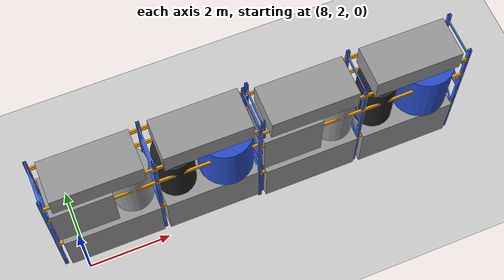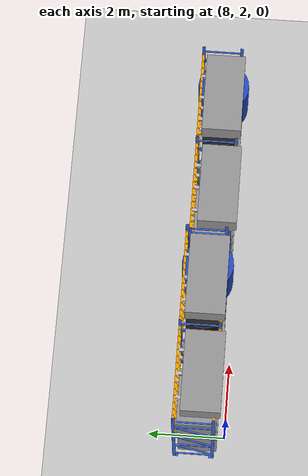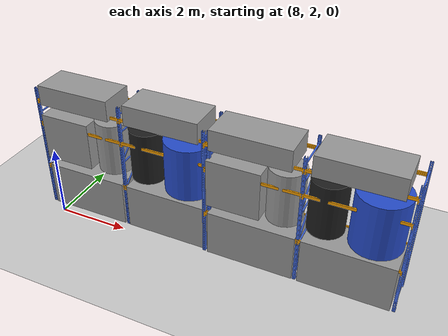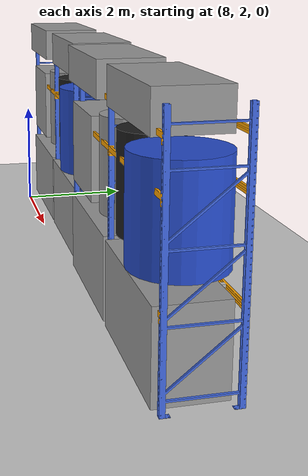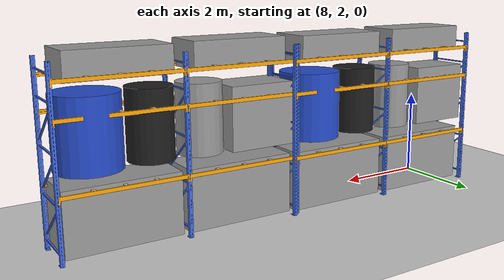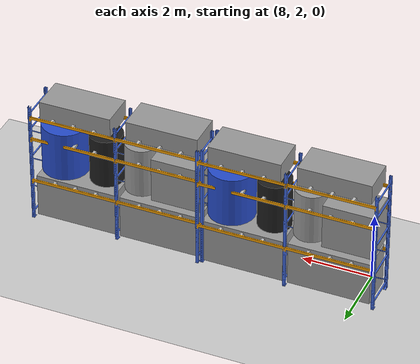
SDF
<sdf version="1.6">
 <world name="default">
  <model name="ground_plane">
   <static>1</static>
   <link name="link">
    <collision name="collision">
     <geometry><plane><normal>0 0 1</normal><size>100 100</size></plane></geometry>
     <surface><friction><ode><mu>100</mu><mu2>50</mu2></ode></friction></surface>
    </collision>
    <visual name="visual">
     <cast_shadows>0</cast_shadows>
     <geometry><plane><normal>0 0 1</normal><size>100 100</size></plane></geometry>
     <material>
      <script><uri>file://media/materials/scripts/gazebo.material</uri><name>Gazebo/Grey</name></script>
     </material>
    </visual>
   </link>
  </model>
  <model name="Full_shelf">
   <link name="link">
    <gravity>0</gravity>
    <inertial>
     <mass>1</mass>
     <inertia><ixx>1</ixx><ixy>0</ixy><ixz>0</ixz><iyy>1</iyy><iyz>0</iyz><izz>1</izz></inertia>
    </inertial>
    <visual name="visual">
     <geometry><mesh><uri>model://shelves_high/meshes/shelves_high.dae</uri><scale>1 1 1</scale></mesh></geometry>
     <material><shader type="vertex"><normal_map>__default__</normal_map></shader></material>
    </visual>
    <collision name="collision">
     <geometry>
      <mesh>
       <uri>/home/kosmastsk/.gazebo/models/shelves_high/meshes/shelves_high_collision.dae</uri>
       <scale>1 1 1</scale>
      </mesh>
     </geometry>
     <surface>
      <friction>
       <ode><mu>1</mu><mu2>1</mu2><fdir1>0 0 0</fdir1><slip1>0</slip1><slip2>0</slip2></ode>
       <torsional>
        <coefficient>1</coefficient>
        <patch_radius>0</patch_radius>
        <surface_radius>0</surface_radius>
        <use_patch_radius>1</use_patch_radius>
        <ode><slip>0</slip></ode>
       </torsional>
      </friction>
      <bounce><restitution_coefficient>0</restitution_coefficient><threshold>1e+06</threshold></bounce>
      <contact>
       <collide_without_contact>0</collide_without_contact>
       <collide_without_contact_bitmask>1</collide_without_contact_bitmask>
       <collide_bitmask>1</collide_bitmask>
       <ode>
        <soft_cfm>0</soft_cfm>
        <soft_erp>0.2</soft_erp>
        <kp>1e+13</kp>
        <kd>1</kd>
        <max_vel>0.01</max_vel>
        <min_depth>0</min_depth>
       </ode>
       <bullet>
        <split_impulse>1</split_impulse>
        <split_impulse_penetration_threshold>-0.01</split_impulse_penetration_threshold>
        <soft_cfm>0</soft_cfm>
        <soft_erp>0.2</soft_erp>
        <kp>1e+13</kp>
        <kd>1</kd>
       </bullet>
      </contact>
     </surface>
    </collision>
   </link>
   <link name="link_0">
    <pose>-1.21806 -0.607758 0.705407 0 -0 0</pose>
    <inertial>
     <mass>3.0149</mass>
     <inertia><ixx>0.669682</ixx><ixy>0</ixy><ixz>0</ixz><iyy>1.78963</iyy><iyz>0</iyz><izz>1.62244</izz></inertia>
    </inertial>
    <gravity>0</gravity>
    <visual name="visual">
     <geometry><box><size>2.33617 1 1.29054</size></box></geometry>
     <material>
      <lighting>1</lighting>
      <script><uri>file://media/materials/scripts/gazebo.material</uri><name>Gazebo/Grey</name></script>
      <ambient>0.3 0.3 0.3 1</ambient>
      <diffuse>0.7 0.7 0.7 1</diffuse>
      <specular>0.01 0.01 0.01 1</specular>
      <emissive>0 0 0 1</emissive>
      <shader type="vertex"><normal_map>__default__</normal_map></shader>
     </material>
    </visual>
    <collision name="collision">
     <geometry><box><size>2.33617 1 1.29054</size></box></geometry>
     <surface>
      <friction>
       <ode><mu>1</mu><mu2>1</mu2><fdir1>0 0 0</fdir1><slip1>0</slip1><slip2>0</slip2></ode>
       <torsional>
        <coefficient>1</coefficient>
        <patch_radius>0</patch_radius>
        <surface_radius>0</surface_radius>
        <use_patch_radius>1</use_patch_radius>
        <ode><slip>0</slip></ode>
       </torsional>
      </friction>
      <bounce><restitution_coefficient>0</restitution_coefficient><threshold>1e+06</threshold></bounce>
      <contact>
       <collide_without_contact>0</collide_without_contact>
       <collide_without_contact_bitmask>1</collide_without_contact_bitmask>
       <collide_bitmask>1</collide_bitmask>
       <ode>
        <soft_cfm>0</soft_cfm>
        <soft_erp>0.2</soft_erp>
        <kp>1e+13</kp>
        <kd>1</kd>
        <max_vel>0.01</max_vel>
        <min_depth>0</min_depth>
       </ode>
       <bullet>
        <split_impulse>1</split_impulse>
        <split_impulse_penetration_threshold>-0.01</split_impulse_penetration_threshold>
        <soft_cfm>0</soft_cfm>
        <soft_erp>0.2</soft_erp>
        <kp>1e+13</kp>
        <kd>1</kd>
       </bullet>
      </contact>
     </surface>
    </collision>
   </link>
   <link name="link_0_clone">
    <pose>1.26342 -0.615799 0.705407 0 -0 0</pose>
    <inertial>
     <mass>3.0149</mass>
     <inertia><ixx>0.669682</ixx><ixy>0</ixy><ixz>0</ixz><iyy>1.78963</iyy><iyz>0</iyz><izz>1.62244</izz></inertia>
    </inertial>
    <gravity>0</gravity>
    <visual name="visual">
     <geometry><box><size>2.33617 1 1.29054</size></box></geometry>
     <material>
      <lighting>1</lighting>
      <script><uri>file://media/materials/scripts/gazebo.material</uri><name>Gazebo/Grey</name></script>
      <ambient>0.3 0.3 0.3 1</ambient>
      <diffuse>0.7 0.7 0.7 1</diffuse>
      <specular>0.01 0.01 0.01 1</specular>
      <emissive>0 0 0 1</emissive>
      <shader type="vertex"><normal_map>__default__</normal_map></shader>
     </material>
    </visual>
    <collision name="collision">
     <geometry><box><size>2.33617 1 1.29054</size></box></geometry>
     <surface>
      <friction>
       <ode><mu>1</mu><mu2>1</mu2><fdir1>0 0 0</fdir1><slip1>0</slip1><slip2>0</slip2></ode>
       <torsional>
        <coefficient>1</coefficient>
        <patch_radius>0</patch_radius>
        <surface_radius>0</surface_radius>
        <use_patch_radius>1</use_patch_radius>
        <ode><slip>0</slip></ode>
       </torsional>
      </friction>
      <bounce><restitution_coefficient>0</restitution_coefficient><threshold>1e+06</threshold></bounce>
      <contact>
       <collide_without_contact>0</collide_without_contact>
       <collide_without_contact_bitmask>1</collide_without_contact_bitmask>
       <collide_bitmask>1</collide_bitmask>
       <ode>
        <soft_cfm>0</soft_cfm>
        <soft_erp>0.2</soft_erp>
        <kp>1e+13</kp>
        <kd>1</kd>
        <max_vel>0.01</max_vel>
        <min_depth>0</min_depth>
       </ode>
       <bullet>
        <split_impulse>1</split_impulse>
        <split_impulse_penetration_threshold>-0.01</split_impulse_penetration_threshold>
        <soft_cfm>0</soft_cfm>
        <soft_erp>0.2</soft_erp>
        <kp>1e+13</kp>
        <kd>1</kd>
       </bullet>
      </contact>
     </surface>
    </collision>
   </link>
   <link name="link_1">
    <pose>-1.72249 -0.574926 2.23564 0 -0 0</pose>
    <inertial>
     <mass>1.9112</mass>
     <inertia>
      <ixx>0.442719</ixx>
      <ixy>0</ixy>
      <ixz>0</ixz>
      <iyy>0.610326</iyy>
      <iyz>0</iyz>
      <izz>0.48614</izz>
     </inertia>
    </inertial>
    <gravity>0</gravity>
    <visual name="visual">
     <geometry><box><size>1.43261 1 1.33407</size></box></geometry>
     <material>
      <lighting>1</lighting>
      <script><uri>file://media/materials/scripts/gazebo.material</uri><name>Gazebo/Grey</name></script>
      <ambient>0.3 0.3 0.3 1</ambient>
      <diffuse>0.7 0.7 0.7 1</diffuse>
      <specular>0.01 0.01 0.01 1</specular>
      <emissive>0 0 0 1</emissive>
      <shader type="vertex"><normal_map>__default__</normal_map></shader>
     </material>
    </visual>
    <collision name="collision">
     <geometry><box><size>1.43261 1 1.33407</size></box></geometry>
     <surface>
      <friction>
       <ode><mu>1</mu><mu2>1</mu2><fdir1>0 0 0</fdir1><slip1>0</slip1><slip2>0</slip2></ode>
       <torsional>
        <coefficient>1</coefficient>
        <patch_radius>0</patch_radius>
        <surface_radius>0</surface_radius>
        <use_patch_radius>1</use_patch_radius>
        <ode><slip>0</slip></ode>
       </torsional>
      </friction>
      <bounce><restitution_coefficient>0</restitution_coefficient><threshold>1e+06</threshold></bounce>
      <contact>
       <collide_without_contact>0</collide_without_contact>
       <collide_without_contact_bitmask>1</collide_without_contact_bitmask>
       <collide_bitmask>1</collide_bitmask>
       <ode>
        <soft_cfm>0</soft_cfm>
        <soft_erp>0.2</soft_erp>
        <kp>1e+13</kp>
        <kd>1</kd>
        <max_vel>0.01</max_vel>
        <min_depth>0</min_depth>
       </ode>
       <bullet>
        <split_impulse>1</split_impulse>
        <split_impulse_penetration_threshold>-0.01</split_impulse_penetration_threshold>
        <soft_cfm>0</soft_cfm>
        <soft_erp>0.2</soft_erp>
        <kp>1e+13</kp>
        <kd>1</kd>
       </bullet>
      </contact>
     </surface>
    </collision>
   </link>
   <link name="link_2">
    <pose>-0.517546 -0.576274 2.28472 0 -0 0</pose>
    <inertial>
     <mass>1.31196</mass>
     <inertia>
      <ixx>0.306625</ixx>
      <ixy>0</ixy>
      <ixz>0</ixz>
      <iyy>0.306625</iyy>
      <iyz>0</iyz>
      <izz>0.147406</izz>
     </inertia>
    </inertial>
    <gravity>0</gravity>
    <visual name="visual">
     <geometry><cylinder><radius>0.474045</radius><length>1.45961</length></cylinder></geometry>
     <material>
      <lighting>1</lighting>
      <script><uri>file://media/materials/scripts/gazebo.material</uri><name>Gazebo/Grey</name></script>
      <ambient>0.3 0.3 0.3 1</ambient>
      <diffuse>0.7 0.7 0.7 1</diffuse>
      <specular>0.01 0.01 0.01 1</specular>
      <emissive>0 0 0 1</emissive>
      <shader type="vertex"><normal_map>__default__</normal_map></shader>
     </material>
    </visual>
    <collision name="collision">
     <geometry><cylinder><radius>0.474045</radius><length>1.45961</length></cylinder></geometry>
     <surface>
      <friction>
       <ode><mu>1</mu><mu2>1</mu2><fdir1>0 0 0</fdir1><slip1>0</slip1><slip2>0</slip2></ode>
       <torsional>
        <coefficient>1</coefficient>
        <patch_radius>0</patch_radius>
        <surface_radius>0</surface_radius>
        <use_patch_radius>1</use_patch_radius>
        <ode><slip>0</slip></ode>
       </torsional>
      </friction>
      <bounce><restitution_coefficient>0</restitution_coefficient><threshold>1e+06</threshold></bounce>
      <contact>
       <collide_without_contact>0</collide_without_contact>
       <collide_without_contact_bitmask>1</collide_without_contact_bitmask>
       <collide_bitmask>1</collide_bitmask>
       <ode>
        <soft_cfm>0</soft_cfm>
        <soft_erp>0.2</soft_erp>
        <kp>1e+13</kp>
        <kd>1</kd>
        <max_vel>0.01</max_vel>
        <min_depth>0</min_depth>
       </ode>
       <bullet>
        <split_impulse>1</split_impulse>
        <split_impulse_penetration_threshold>-0.01</split_impulse_penetration_threshold>
        <soft_cfm>0</soft_cfm>
        <soft_erp>0.2</soft_erp>
        <kp>1e+13</kp>
        <kd>1</kd>
       </bullet>
      </contact>
     </surface>
    </collision>
   </link>
   <link name="link_2_clone">
    <pose>0.526936 -0.581711 2.28472 0 -0 0</pose>
    <inertial>
     <mass>1.31196</mass>
     <inertia>
      <ixx>0.306625</ixx>
      <ixy>0</ixy>
      <ixz>0</ixz>
      <iyy>0.306625</iyy>
      <iyz>0</iyz>
      <izz>0.147406</izz>
     </inertia>
    </inertial>
    <gravity>0</gravity>
    <visual name="visual">
     <geometry><cylinder><radius>0.474045</radius><length>1.45961</length></cylinder></geometry>
     <material>
      <lighting>1</lighting>
      <script><uri>file://media/materials/scripts/gazebo.material</uri><name>Gazebo/Black</name></script>
      <ambient>0.3 0.3 0.3 1</ambient>
      <diffuse>0.7 0.7 0.7 1</diffuse>
      <specular>0.01 0.01 0.01 1</specular>
      <emissive>0 0 0 1</emissive>
      <shader type="vertex"><normal_map>__default__</normal_map></shader>
     </material>
    </visual>
    <collision name="collision">
     <geometry><cylinder><radius>0.474045</radius><length>1.45961</length></cylinder></geometry>
     <surface>
      <friction>
       <ode><mu>1</mu><mu2>1</mu2><fdir1>0 0 0</fdir1><slip1>0</slip1><slip2>0</slip2></ode>
       <torsional>
        <coefficient>1</coefficient>
        <patch_radius>0</patch_radius>
        <surface_radius>0</surface_radius>
        <use_patch_radius>1</use_patch_radius>
        <ode><slip>0</slip></ode>
       </torsional>
      </friction>
      <bounce><restitution_coefficient>0</restitution_coefficient><threshold>1e+06</threshold></bounce>
      <contact>
       <collide_without_contact>0</collide_without_contact>
       <collide_without_contact_bitmask>1</collide_without_contact_bitmask>
       <collide_bitmask>1</collide_bitmask>
       <ode>
        <soft_cfm>0</soft_cfm>
        <soft_erp>0.2</soft_erp>
        <kp>1e+13</kp>
        <kd>1</kd>
        <max_vel>0.01</max_vel>
        <min_depth>0</min_depth>
       </ode>
       <bullet>
        <split_impulse>1</split_impulse>
        <split_impulse_penetration_threshold>-0.01</split_impulse_penetration_threshold>
        <soft_cfm>0</soft_cfm>
        <soft_erp>0.2</soft_erp>
        <kp>1e+13</kp>
        <kd>1</kd>
       </bullet>
      </contact>
     </surface>
    </collision>
   </link>
   <link name="link_2_clone_0">
    <pose>1.75429 -0.591645 2.28472 0 -0 0</pose>
    <inertial>
     <mass>2.53501</mass>
     <inertia>
      <ixx>0.725231</ixx>
      <ixy>0</ixy>
      <ixz>0</ixz>
      <iyy>0.725231</iyy>
      <iyz>0</iyz>
      <izz>0.550343</izz>
     </inertia>
    </inertial>
    <gravity>0</gravity>
    <visual name="visual">
     <geometry><cylinder><radius>0.658947</radius><length>1.45961</length></cylinder></geometry>
     <material>
      <lighting>1</lighting>
      <script><uri>file://media/materials/scripts/gazebo.material</uri><name>Gazebo/Blue</name></script>
      <ambient>0.3 0.3 0.3 1</ambient>
      <diffuse>0.7 0.7 0.7 1</diffuse>
      <specular>0.01 0.01 0.01 1</specular>
      <emissive>0 0 0 1</emissive>
      <shader type="vertex"><normal_map>__default__</normal_map></shader>
     </material>
    </visual>
    <collision name="collision">
     <geometry><cylinder><radius>0.658947</radius><length>1.45961</length></cylinder></geometry>
     <surface>
      <friction>
       <ode><mu>1</mu><mu2>1</mu2><fdir1>0 0 0</fdir1><slip1>0</slip1><slip2>0</slip2></ode>
       <torsional>
        <coefficient>1</coefficient>
        <patch_radius>0</patch_radius>
        <surface_radius>0</surface_radius>
        <use_patch_radius>1</use_patch_radius>
        <ode><slip>0</slip></ode>
       </torsional>
      </friction>
      <bounce><restitution_coefficient>0</restitution_coefficient><threshold>1e+06</threshold></bounce>
      <contact>
       <collide_without_contact>0</collide_without_contact>
       <collide_without_contact_bitmask>1</collide_without_contact_bitmask>
       <collide_bitmask>1</collide_bitmask>
       <ode>
        <soft_cfm>0</soft_cfm>
        <soft_erp>0.2</soft_erp>
        <kp>1e+13</kp>
        <kd>1</kd>
        <max_vel>0.01</max_vel>
        <min_depth>0</min_depth>
       </ode>
       <bullet>
        <split_impulse>1</split_impulse>
        <split_impulse_penetration_threshold>-0.01</split_impulse_penetration_threshold>
        <soft_cfm>0</soft_cfm>
        <soft_erp>0.2</soft_erp>
        <kp>1e+13</kp>
        <kd>1</kd>
       </bullet>
      </contact>
     </surface>
    </collision>
   </link>
   <link name="link_3">
    <pose>-1.28062 -0.665513 3.55602 0 -0 0</pose>
    <inertial>
     <mass>1.1657</mass>
     <inertia>
      <ixx>0.127836</ixx>
      <ixy>0</ixy>
      <ixz>0</ixz>
      <iyy>0.448459</iyy>
      <iyz>0</iyz>
      <izz>0.514907</izz>
     </inertia>
    </inertial>
    <gravity>0</gravity>
    <visual name="visual">
     <geometry><box><size>2.07377 1 0.562114</size></box></geometry>
     <material>
      <lighting>1</lighting>
      <script><uri>file://media/materials/scripts/gazebo.material</uri><name>Gazebo/Grey</name></script>
      <ambient>0.3 0.3 0.3 1</ambient>
      <diffuse>0.7 0.7 0.7 1</diffuse>
      <specular>0.01 0.01 0.01 1</specular>
      <emissive>0 0 0 1</emissive>
      <shader type="vertex"><normal_map>__default__</normal_map></shader>
     </material>
    </visual>
    <collision name="collision">
     <geometry><box><size>2.07377 1 0.562114</size></box></geometry>
     <surface>
      <friction>
       <ode><mu>1</mu><mu2>1</mu2><fdir1>0 0 0</fdir1><slip1>0</slip1><slip2>0</slip2></ode>
       <torsional>
        <coefficient>1</coefficient>
        <patch_radius>0</patch_radius>
        <surface_radius>0</surface_radius>
        <use_patch_radius>1</use_patch_radius>
        <ode><slip>0</slip></ode>
       </torsional>
      </friction>
      <bounce><restitution_coefficient>0</restitution_coefficient><threshold>1e+06</threshold></bounce>
      <contact>
       <collide_without_contact>0</collide_without_contact>
       <collide_without_contact_bitmask>1</collide_without_contact_bitmask>
       <collide_bitmask>1</collide_bitmask>
       <ode>
        <soft_cfm>0</soft_cfm>
        <soft_erp>0.2</soft_erp>
        <kp>1e+13</kp>
        <kd>1</kd>
        <max_vel>0.01</max_vel>
        <min_depth>0</min_depth>
       </ode>
       <bullet>
        <split_impulse>1</split_impulse>
        <split_impulse_penetration_threshold>-0.01</split_impulse_penetration_threshold>
        <soft_cfm>0</soft_cfm>
        <soft_erp>0.2</soft_erp>
        <kp>1e+13</kp>
        <kd>1</kd>
       </bullet>
      </contact>
     </surface>
    </collision>
   </link>
   <link name="link_3_clone">
    <pose>1.22598 -0.613311 3.54121 0 -0 0</pose>
    <inertial>
     <mass>1.1657</mass>
     <inertia>
      <ixx>0.127836</ixx>
      <ixy>0</ixy>
      <ixz>0</ixz>
      <iyy>0.448459</iyy>
      <iyz>0</iyz>
      <izz>0.514907</izz>
     </inertia>
    </inertial>
    <gravity>0</gravity>
    <visual name="visual">
     <geometry><box><size>2.07377 1 0.562114</size></box></geometry>
     <material>
      <lighting>1</lighting>
      <script><uri>file://media/materials/scripts/gazebo.material</uri><name>Gazebo/Grey</name></script>
      <ambient>0.3 0.3 0.3 1</ambient>
      <diffuse>0.7 0.7 0.7 1</diffuse>
      <specular>0.01 0.01 0.01 1</specular>
      <emissive>0 0 0 1</emissive>
      <shader type="vertex"><normal_map>__default__</normal_map></shader>
     </material>
    </visual>
    <collision name="collision">
     <geometry><box><size>2.07377 1 0.562114</size></box></geometry>
     <surface>
      <friction>
       <ode><mu>1</mu><mu2>1</mu2><fdir1>0 0 0</fdir1><slip1>0</slip1><slip2>0</slip2></ode>
       <torsional>
        <coefficient>1</coefficient>
        <patch_radius>0</patch_radius>
        <surface_radius>0</surface_radius>
        <use_patch_radius>1</use_patch_radius>
        <ode><slip>0</slip></ode>
       </torsional>
      </friction>
      <bounce><restitution_coefficient>0</restitution_coefficient><threshold>1e+06</threshold></bounce>
      <contact>
       <collide_without_contact>0</collide_without_contact>
       <collide_without_contact_bitmask>1</collide_without_contact_bitmask>
       <collide_bitmask>1</collide_bitmask>
       <ode>
        <soft_cfm>0</soft_cfm>
        <soft_erp>0.2</soft_erp>
        <kp>1e+13</kp>
        <kd>1</kd>
        <max_vel>0.01</max_vel>
        <min_depth>0</min_depth>
       </ode>
       <bullet>
        <split_impulse>1</split_impulse>
        <split_impulse_penetration_threshold>-0.01</split_impulse_penetration_threshold>
        <soft_cfm>0</soft_cfm>
        <soft_erp>0.2</soft_erp>
        <kp>1e+13</kp>
        <kd>1</kd>
       </bullet>
      </contact>
     </surface>
    </collision>
   </link>
   <static>1</static>
   <pose>14.9388 3.2209 0 0 -0 0</pose>
  </model>
  <model name="Full_shelf_0">
   <link name="link">
    <gravity>0</gravity>
    <inertial>
     <mass>1</mass>
     <inertia><ixx>1</ixx><ixy>0</ixy><ixz>0</ixz><iyy>1</iyy><iyz>0</iyz><izz>1</izz></inertia>
    </inertial>
    <visual name="visual">
     <geometry><mesh><uri>model://shelves_high/meshes/shelves_high.dae</uri><scale>1 1 1</scale></mesh></geometry>
     <material><shader type="vertex"><normal_map>__default__</normal_map></shader></material>
    </visual>
    <collision name="collision">
     <geometry>
      <mesh>
       <uri>/home/kosmastsk/.gazebo/models/shelves_high/meshes/shelves_high_collision.dae</uri>
       <scale>1 1 1</scale>
      </mesh>
     </geometry>
     <surface>
      <friction>
       <ode><mu>1</mu><mu2>1</mu2><fdir1>0 0 0</fdir1><slip1>0</slip1><slip2>0</slip2></ode>
       <torsional>
        <coefficient>1</coefficient>
        <patch_radius>0</patch_radius>
        <surface_radius>0</surface_radius>
        <use_patch_radius>1</use_patch_radius>
        <ode><slip>0</slip></ode>
       </torsional>
      </friction>
      <bounce><restitution_coefficient>0</restitution_coefficient><threshold>1e+06</threshold></bounce>
      <contact>
       <collide_without_contact>0</collide_without_contact>
       <collide_without_contact_bitmask>1</collide_without_contact_bitmask>
       <collide_bitmask>1</collide_bitmask>
       <ode>
        <soft_cfm>0</soft_cfm>
        <soft_erp>0.2</soft_erp>
        <kp>1e+13</kp>
        <kd>1</kd>
        <max_vel>0.01</max_vel>
        <min_depth>0</min_depth>
       </ode>
       <bullet>
        <split_impulse>1</split_impulse>
        <split_impulse_penetration_threshold>-0.01</split_impulse_penetration_threshold>
        <soft_cfm>0</soft_cfm>
        <soft_erp>0.2</soft_erp>
        <kp>1e+13</kp>
        <kd>1</kd>
       </bullet>
      </contact>
     </surface>
    </collision>
   </link>
   <link name="link_0">
    <pose>-1.21806 -0.607758 0.705407 0 -0 0</pose>
    <inertial>
     <mass>3.0149</mass>
     <inertia><ixx>0.669682</ixx><ixy>0</ixy><ixz>0</ixz><iyy>1.78963</iyy><iyz>0</iyz><izz>1.62244</izz></inertia>
    </inertial>
    <gravity>0</gravity>
    <visual name="visual">
     <geometry><box><size>2.33617 1 1.29054</size></box></geometry>
     <material>
      <lighting>1</lighting>
      <script><uri>file://media/materials/scripts/gazebo.material</uri><name>Gazebo/Grey</name></script>
      <ambient>0.3 0.3 0.3 1</ambient>
      <diffuse>0.7 0.7 0.7 1</diffuse>
      <specular>0.01 0.01 0.01 1</specular>
      <emissive>0 0 0 1</emissive>
      <shader type="vertex"><normal_map>__default__</normal_map></shader>
     </material>
    </visual>
    <collision name="collision">
     <geometry><box><size>2.33617 1 1.29054</size></box></geometry>
     <surface>
      <friction>
       <ode><mu>1</mu><mu2>1</mu2><fdir1>0 0 0</fdir1><slip1>0</slip1><slip2>0</slip2></ode>
       <torsional>
        <coefficient>1</coefficient>
        <patch_radius>0</patch_radius>
        <surface_radius>0</surface_radius>
        <use_patch_radius>1</use_patch_radius>
        <ode><slip>0</slip></ode>
       </torsional>
      </friction>
      <bounce><restitution_coefficient>0</restitution_coefficient><threshold>1e+06</threshold></bounce>
      <contact>
       <collide_without_contact>0</collide_without_contact>
       <collide_without_contact_bitmask>1</collide_without_contact_bitmask>
       <collide_bitmask>1</collide_bitmask>
       <ode>
        <soft_cfm>0</soft_cfm>
        <soft_erp>0.2</soft_erp>
        <kp>1e+13</kp>
        <kd>1</kd>
        <max_vel>0.01</max_vel>
        <min_depth>0</min_depth>
       </ode>
       <bullet>
        <split_impulse>1</split_impulse>
        <split_impulse_penetration_threshold>-0.01</split_impulse_penetration_threshold>
        <soft_cfm>0</soft_cfm>
        <soft_erp>0.2</soft_erp>
        <kp>1e+13</kp>
        <kd>1</kd>
       </bullet>
      </contact>
     </surface>
    </collision>
   </link>
   <link name="link_0_clone">
    <pose>1.26342 -0.615799 0.705407 0 -0 0</pose>
    <inertial>
     <mass>3.0149</mass>
     <inertia><ixx>0.669682</ixx><ixy>0</ixy><ixz>0</ixz><iyy>1.78963</iyy><iyz>0</iyz><izz>1.62244</izz></inertia>
    </inertial>
    <gravity>0</gravity>
    <visual name="visual">
     <geometry><box><size>2.33617 1 1.29054</size></box></geometry>
     <material>
      <lighting>1</lighting>
      <script><uri>file://media/materials/scripts/gazebo.material</uri><name>Gazebo/Grey</name></script>
      <ambient>0.3 0.3 0.3 1</ambient>
      <diffuse>0.7 0.7 0.7 1</diffuse>
      <specular>0.01 0.01 0.01 1</specular>
      <emissive>0 0 0 1</emissive>
      <shader type="vertex"><normal_map>__default__</normal_map></shader>
     </material>
    </visual>
    <collision name="collision">
     <geometry><box><size>2.33617 1 1.29054</size></box></geometry>
     <surface>
      <friction>
       <ode><mu>1</mu><mu2>1</mu2><fdir1>0 0 0</fdir1><slip1>0</slip1><slip2>0</slip2></ode>
       <torsional>
        <coefficient>1</coefficient>
        <patch_radius>0</patch_radius>
        <surface_radius>0</surface_radius>
        <use_patch_radius>1</use_patch_radius>
        <ode><slip>0</slip></ode>
       </torsional>
      </friction>
      <bounce><restitution_coefficient>0</restitution_coefficient><threshold>1e+06</threshold></bounce>
      <contact>
       <collide_without_contact>0</collide_without_contact>
       <collide_without_contact_bitmask>1</collide_without_contact_bitmask>
       <collide_bitmask>1</collide_bitmask>
       <ode>
        <soft_cfm>0</soft_cfm>
        <soft_erp>0.2</soft_erp>
        <kp>1e+13</kp>
        <kd>1</kd>
        <max_vel>0.01</max_vel>
        <min_depth>0</min_depth>
       </ode>
       <bullet>
        <split_impulse>1</split_impulse>
        <split_impulse_penetration_threshold>-0.01</split_impulse_penetration_threshold>
        <soft_cfm>0</soft_cfm>
        <soft_erp>0.2</soft_erp>
        <kp>1e+13</kp>
        <kd>1</kd>
       </bullet>
      </contact>
     </surface>
    </collision>
   </link>
   <link name="link_1">
    <pose>-1.72249 -0.574926 2.23564 0 -0 0</pose>
    <inertial>
     <mass>1.9112</mass>
     <inertia>
      <ixx>0.442719</ixx>
      <ixy>0</ixy>
      <ixz>0</ixz>
      <iyy>0.610326</iyy>
      <iyz>0</iyz>
      <izz>0.48614</izz>
     </inertia>
    </inertial>
    <gravity>0</gravity>
    <visual name="visual">
     <geometry><box><size>1.43261 1 1.33407</size></box></geometry>
     <material>
      <lighting>1</lighting>
      <script><uri>file://media/materials/scripts/gazebo.material</uri><name>Gazebo/Grey</name></script>
      <ambient>0.3 0.3 0.3 1</ambient>
      <diffuse>0.7 0.7 0.7 1</diffuse>
      <specular>0.01 0.01 0.01 1</specular>
      <emissive>0 0 0 1</emissive>
      <shader type="vertex"><normal_map>__default__</normal_map></shader>
     </material>
    </visual>
    <collision name="collision">
     <geometry><box><size>1.43261 1 1.33407</size></box></geometry>
     <surface>
      <friction>
       <ode><mu>1</mu><mu2>1</mu2><fdir1>0 0 0</fdir1><slip1>0</slip1><slip2>0</slip2></ode>
       <torsional>
        <coefficient>1</coefficient>
        <patch_radius>0</patch_radius>
        <surface_radius>0</surface_radius>
        <use_patch_radius>1</use_patch_radius>
        <ode><slip>0</slip></ode>
       </torsional>
      </friction>
      <bounce><restitution_coefficient>0</restitution_coefficient><threshold>1e+06</threshold></bounce>
      <contact>
       <collide_without_contact>0</collide_without_contact>
       <collide_without_contact_bitmask>1</collide_without_contact_bitmask>
       <collide_bitmask>1</collide_bitmask>
       <ode>
        <soft_cfm>0</soft_cfm>
        <soft_erp>0.2</soft_erp>
        <kp>1e+13</kp>
        <kd>1</kd>
        <max_vel>0.01</max_vel>
        <min_depth>0</min_depth>
       </ode>
       <bullet>
        <split_impulse>1</split_impulse>
        <split_impulse_penetration_threshold>-0.01</split_impulse_penetration_threshold>
        <soft_cfm>0</soft_cfm>
        <soft_erp>0.2</soft_erp>
        <kp>1e+13</kp>
        <kd>1</kd>
       </bullet>
      </contact>
     </surface>
    </collision>
   </link>
   <link name="link_2">
    <pose>-0.517546 -0.576274 2.28472 0 -0 0</pose>
    <inertial>
     <mass>1.31196</mass>
     <inertia>
      <ixx>0.306625</ixx>
      <ixy>0</ixy>
      <ixz>0</ixz>
      <iyy>0.306625</iyy>
      <iyz>0</iyz>
      <izz>0.147406</izz>
     </inertia>
    </inertial>
    <gravity>0</gravity>
    <visual name="visual">
     <geometry><cylinder><radius>0.474045</radius><length>1.45961</length></cylinder></geometry>
     <material>
      <lighting>1</lighting>
      <script><uri>file://media/materials/scripts/gazebo.material</uri><name>Gazebo/Grey</name></script>
      <ambient>0.3 0.3 0.3 1</ambient>
      <diffuse>0.7 0.7 0.7 1</diffuse>
      <specular>0.01 0.01 0.01 1</specular>
      <emissive>0 0 0 1</emissive>
      <shader type="vertex"><normal_map>__default__</normal_map></shader>
     </material>
    </visual>
    <collision name="collision">
     <geometry><cylinder><radius>0.474045</radius><length>1.45961</length></cylinder></geometry>
     <surface>
      <friction>
       <ode><mu>1</mu><mu2>1</mu2><fdir1>0 0 0</fdir1><slip1>0</slip1><slip2>0</slip2></ode>
       <torsional>
        <coefficient>1</coefficient>
        <patch_radius>0</patch_radius>
        <surface_radius>0</surface_radius>
        <use_patch_radius>1</use_patch_radius>
        <ode><slip>0</slip></ode>
       </torsional>
      </friction>
      <bounce><restitution_coefficient>0</restitution_coefficient><threshold>1e+06</threshold></bounce>
      <contact>
       <collide_without_contact>0</collide_without_contact>
       <collide_without_contact_bitmask>1</collide_without_contact_bitmask>
       <collide_bitmask>1</collide_bitmask>
       <ode>
        <soft_cfm>0</soft_cfm>
        <soft_erp>0.2</soft_erp>
        <kp>1e+13</kp>
        <kd>1</kd>
        <max_vel>0.01</max_vel>
        <min_depth>0</min_depth>
       </ode>
       <bullet>
        <split_impulse>1</split_impulse>
        <split_impulse_penetration_threshold>-0.01</split_impulse_penetration_threshold>
        <soft_cfm>0</soft_cfm>
        <soft_erp>0.2</soft_erp>
        <kp>1e+13</kp>
        <kd>1</kd>
       </bullet>
      </contact>
     </surface>
    </collision>
   </link>
   <link name="link_2_clone">
    <pose>0.526936 -0.581711 2.28472 0 -0 0</pose>
    <inertial>
     <mass>1.31196</mass>
     <inertia>
      <ixx>0.306625</ixx>
      <ixy>0</ixy>
      <ixz>0</ixz>
      <iyy>0.306625</iyy>
      <iyz>0</iyz>
      <izz>0.147406</izz>
     </inertia>
    </inertial>
    <gravity>0</gravity>
    <visual name="visual">
     <geometry><cylinder><radius>0.474045</radius><length>1.45961</length></cylinder></geometry>
     <material>
      <lighting>1</lighting>
      <script><uri>file://media/materials/scripts/gazebo.material</uri><name>Gazebo/Black</name></script>
      <ambient>0.3 0.3 0.3 1</ambient>
      <diffuse>0.7 0.7 0.7 1</diffuse>
      <specular>0.01 0.01 0.01 1</specular>
      <emissive>0 0 0 1</emissive>
      <shader type="vertex"><normal_map>__default__</normal_map></shader>
     </material>
    </visual>
    <collision name="collision">
     <geometry><cylinder><radius>0.474045</radius><length>1.45961</length></cylinder></geometry>
     <surface>
      <friction>
       <ode><mu>1</mu><mu2>1</mu2><fdir1>0 0 0</fdir1><slip1>0</slip1><slip2>0</slip2></ode>
       <torsional>
        <coefficient>1</coefficient>
        <patch_radius>0</patch_radius>
        <surface_radius>0</surface_radius>
        <use_patch_radius>1</use_patch_radius>
        <ode><slip>0</slip></ode>
       </torsional>
      </friction>
      <bounce><restitution_coefficient>0</restitution_coefficient><threshold>1e+06</threshold></bounce>
      <contact>
       <collide_without_contact>0</collide_without_contact>
       <collide_without_contact_bitmask>1</collide_without_contact_bitmask>
       <collide_bitmask>1</collide_bitmask>
       <ode>
        <soft_cfm>0</soft_cfm>
        <soft_erp>0.2</soft_erp>
        <kp>1e+13</kp>
        <kd>1</kd>
        <max_vel>0.01</max_vel>
        <min_depth>0</min_depth>
       </ode>
       <bullet>
        <split_impulse>1</split_impulse>
        <split_impulse_penetration_threshold>-0.01</split_impulse_penetration_threshold>
        <soft_cfm>0</soft_cfm>
        <soft_erp>0.2</soft_erp>
        <kp>1e+13</kp>
        <kd>1</kd>
       </bullet>
      </contact>
     </surface>
    </collision>
   </link>
   <link name="link_2_clone_0">
    <pose>1.75429 -0.591645 2.28472 0 -0 0</pose>
    <inertial>
     <mass>2.53501</mass>
     <inertia>
      <ixx>0.725231</ixx>
      <ixy>0</ixy>
      <ixz>0</ixz>
      <iyy>0.725231</iyy>
      <iyz>0</iyz>
      <izz>0.550343</izz>
     </inertia>
    </inertial>
    <gravity>0</gravity>
    <visual name="visual">
     <geometry><cylinder><radius>0.658947</radius><length>1.45961</length></cylinder></geometry>
     <material>
      <lighting>1</lighting>
      <script><uri>file://media/materials/scripts/gazebo.material</uri><name>Gazebo/Blue</name></script>
      <ambient>0.3 0.3 0.3 1</ambient>
      <diffuse>0.7 0.7 0.7 1</diffuse>
      <specular>0.01 0.01 0.01 1</specular>
      <emissive>0 0 0 1</emissive>
      <shader type="vertex"><normal_map>__default__</normal_map></shader>
     </material>
    </visual>
    <collision name="collision">
     <geometry><cylinder><radius>0.658947</radius><length>1.45961</length></cylinder></geometry>
     <surface>
      <friction>
       <ode><mu>1</mu><mu2>1</mu2><fdir1>0 0 0</fdir1><slip1>0</slip1><slip2>0</slip2></ode>
       <torsional>
        <coefficient>1</coefficient>
        <patch_radius>0</patch_radius>
        <surface_radius>0</surface_radius>
        <use_patch_radius>1</use_patch_radius>
        <ode><slip>0</slip></ode>
       </torsional>
      </friction>
      <bounce><restitution_coefficient>0</restitution_coefficient><threshold>1e+06</threshold></bounce>
      <contact>
       <collide_without_contact>0</collide_without_contact>
       <collide_without_contact_bitmask>1</collide_without_contact_bitmask>
       <collide_bitmask>1</collide_bitmask>
       <ode>
        <soft_cfm>0</soft_cfm>
        <soft_erp>0.2</soft_erp>
        <kp>1e+13</kp>
        <kd>1</kd>
        <max_vel>0.01</max_vel>
        <min_depth>0</min_depth>
       </ode>
       <bullet>
        <split_impulse>1</split_impulse>
        <split_impulse_penetration_threshold>-0.01</split_impulse_penetration_threshold>
        <soft_cfm>0</soft_cfm>
        <soft_erp>0.2</soft_erp>
        <kp>1e+13</kp>
        <kd>1</kd>
       </bullet>
      </contact>
     </surface>
    </collision>
   </link>
   <link name="link_3">
    <pose>-1.28062 -0.665513 3.55602 0 -0 0</pose>
    <inertial>
     <mass>1.1657</mass>
     <inertia>
      <ixx>0.127836</ixx>
      <ixy>0</ixy>
      <ixz>0</ixz>
      <iyy>0.448459</iyy>
      <iyz>0</iyz>
      <izz>0.514907</izz>
     </inertia>
    </inertial>
    <gravity>0</gravity>
    <visual name="visual">
     <geometry><box><size>2.07377 1 0.562114</size></box></geometry>
     <material>
      <lighting>1</lighting>
      <script><uri>file://media/materials/scripts/gazebo.material</uri><name>Gazebo/Grey</name></script>
      <ambient>0.3 0.3 0.3 1</ambient>
      <diffuse>0.7 0.7 0.7 1</diffuse>
      <specular>0.01 0.01 0.01 1</specular>
      <emissive>0 0 0 1</emissive>
      <shader type="vertex"><normal_map>__default__</normal_map></shader>
     </material>
    </visual>
    <collision name="collision">
     <geometry><box><size>2.07377 1 0.562114</size></box></geometry>
     <surface>
      <friction>
       <ode><mu>1</mu><mu2>1</mu2><fdir1>0 0 0</fdir1><slip1>0</slip1><slip2>0</slip2></ode>
       <torsional>
        <coefficient>1</coefficient>
        <patch_radius>0</patch_radius>
        <surface_radius>0</surface_radius>
        <use_patch_radius>1</use_patch_radius>
        <ode><slip>0</slip></ode>
       </torsional>
      </friction>
      <bounce><restitution_coefficient>0</restitution_coefficient><threshold>1e+06</threshold></bounce>
      <contact>
       <collide_without_contact>0</collide_without_contact>
       <collide_without_contact_bitmask>1</collide_without_contact_bitmask>
       <collide_bitmask>1</collide_bitmask>
       <ode>
        <soft_cfm>0</soft_cfm>
        <soft_erp>0.2</soft_erp>
        <kp>1e+13</kp>
        <kd>1</kd>
        <max_vel>0.01</max_vel>
        <min_depth>0</min_depth>
       </ode>
       <bullet>
        <split_impulse>1</split_impulse>
        <split_impulse_penetration_threshold>-0.01</split_impulse_penetration_threshold>
        <soft_cfm>0</soft_cfm>
        <soft_erp>0.2</soft_erp>
        <kp>1e+13</kp>
        <kd>1</kd>
       </bullet>
      </contact>
     </surface>
    </collision>
   </link>
   <link name="link_3_clone">
    <pose>1.22598 -0.613311 3.54121 0 -0 0</pose>
    <inertial>
     <mass>1.1657</mass>
     <inertia>
      <ixx>0.127836</ixx>
      <ixy>0</ixy>
      <ixz>0</ixz>
      <iyy>0.448459</iyy>
      <iyz>0</iyz>
      <izz>0.514907</izz>
     </inertia>
    </inertial>
    <gravity>0</gravity>
    <visual name="visual">
     <geometry><box><size>2.07377 1 0.562114</size></box></geometry>
     <material>
      <lighting>1</lighting>
      <script><uri>file://media/materials/scripts/gazebo.material</uri><name>Gazebo/Grey</name></script>
      <ambient>0.3 0.3 0.3 1</ambient>
      <diffuse>0.7 0.7 0.7 1</diffuse>
      <specular>0.01 0.01 0.01 1</specular>
      <emissive>0 0 0 1</emissive>
      <shader type="vertex"><normal_map>__default__</normal_map></shader>
     </material>
    </visual>
    <collision name="collision">
     <geometry><box><size>2.07377 1 0.562114</size></box></geometry>
     <surface>
      <friction>
       <ode><mu>1</mu><mu2>1</mu2><fdir1>0 0 0</fdir1><slip1>0</slip1><slip2>0</slip2></ode>
       <torsional>
        <coefficient>1</coefficient>
        <patch_radius>0</patch_radius>
        <surface_radius>0</surface_radius>
        <use_patch_radius>1</use_patch_radius>
        <ode><slip>0</slip></ode>
       </torsional>
      </friction>
      <bounce><restitution_coefficient>0</restitution_coefficient><threshold>1e+06</threshold></bounce>
      <contact>
       <collide_without_contact>0</collide_without_contact>
       <collide_without_contact_bitmask>1</collide_without_contact_bitmask>
       <collide_bitmask>1</collide_bitmask>
       <ode>
        <soft_cfm>0</soft_cfm>
        <soft_erp>0.2</soft_erp>
        <kp>1e+13</kp>
        <kd>1</kd>
        <max_vel>0.01</max_vel>
        <min_depth>0</min_depth>
       </ode>
       <bullet>
        <split_impulse>1</split_impulse>
        <split_impulse_penetration_threshold>-0.01</split_impulse_penetration_threshold>
        <soft_cfm>0</soft_cfm>
        <soft_erp>0.2</soft_erp>
        <kp>1e+13</kp>
        <kd>1</kd>
       </bullet>
      </contact>
     </surface>
    </collision>
   </link>
   <static>1</static>
   <pose>10.013 3.30547 0 0 -0 0</pose>
  </model>
 </world>
</sdf>
